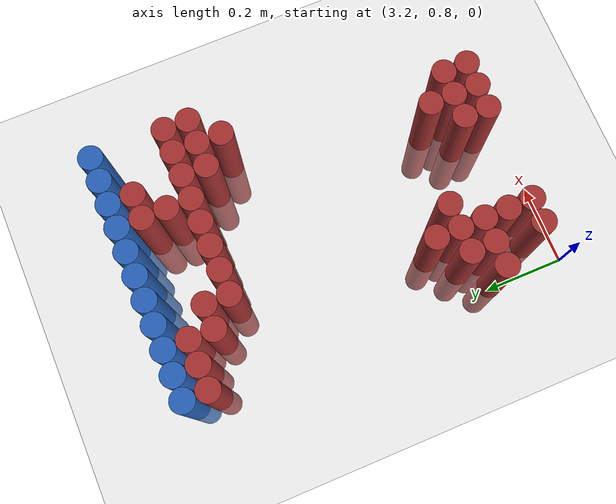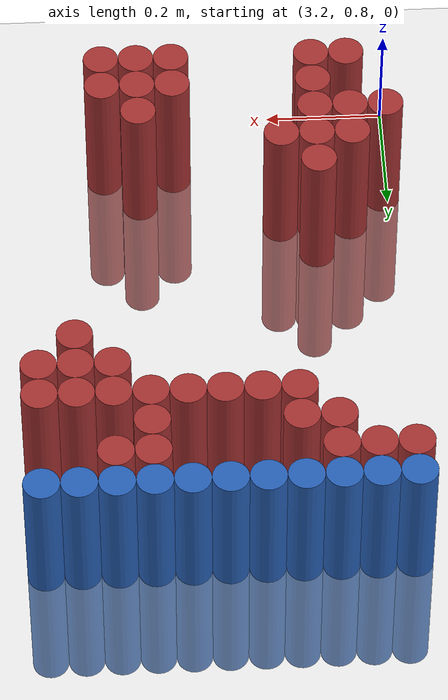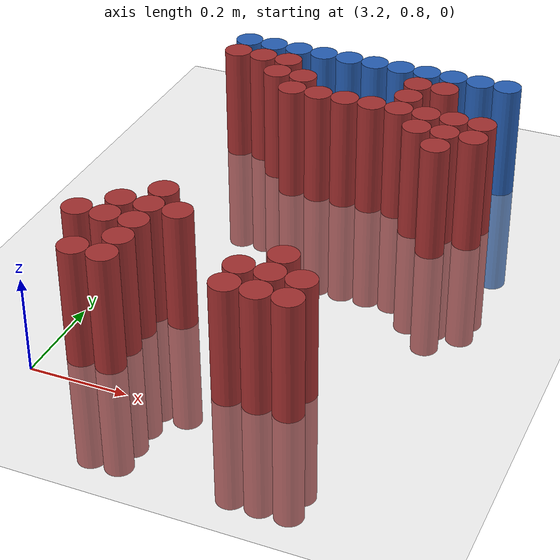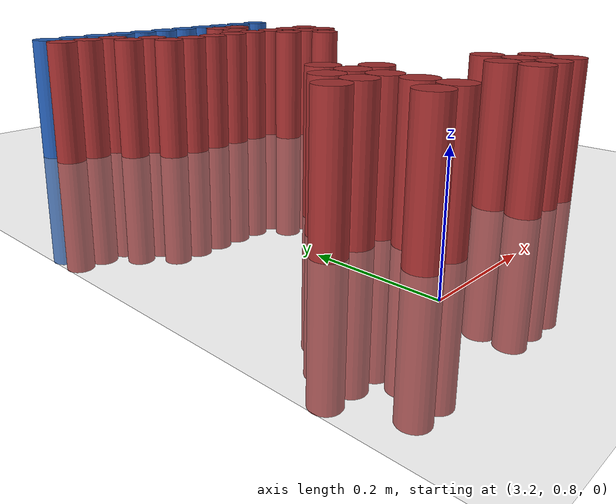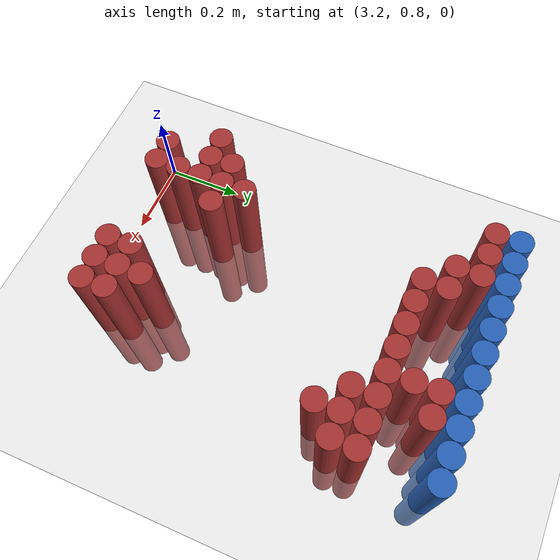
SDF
<sdf version="1.6">
 <world name="default">
  <model name="ground_plane">
   <static>1</static>
   <link name="link">
    <collision name="collision">
     <geometry><plane><normal>0 0 1</normal><size>100 100</size></plane></geometry>
     <surface><friction><ode><mu>100</mu><mu2>50</mu2></ode></friction></surface>
    </collision>
    <visual name="visual">
     <cast_shadows>0</cast_shadows>
     <geometry><plane><normal>0 0 1</normal><size>100 100</size></plane></geometry>
     <material>
      <script><uri>file://media/materials/scripts/gazebo.material</uri><name>Gazebo/Grey</name></script>
     </material>
    </visual>
   </link>
  </model>
  <model name="unit_cylinder_114">
   <static>1</static>
   <pose>3.210000 1.770000 0.000000 0.000000 0.000000 0.000000</pose>
   <link name="link">
    <inertial>
     <mass>1</mass>
     <inertia><ixx>0.145833</ixx><ixy>0</ixy><ixz>0</ixz><iyy>0.145833</iyy><iyz>0</iyz><izz>0.125</izz></inertia>
    </inertial>
    <collision name="collision">
     <geometry><cylinder><radius>0.030000</radius><length>0.5</length></cylinder></geometry>
    </collision>
    <visual name="visual">
     <geometry><cylinder><radius>0.030000</radius><length>0.5</length></cylinder></geometry>
     <material>
      <ambient>0.152000 0.379000 0.720000 1</ambient>
      <diffuse>0.152000 0.379000 0.720000 1</diffuse>
     </material>
     <material>
      <script><name>Gazebo/Grey</name><uri>file://media/materials/scripts/gazebo.material</uri></script>
     </material>
    </visual>
   </link>
  </model>
  <model name="unit_cylinder_115">
   <static>1</static>
   <pose>3.270000 1.770000 0.000000 0.000000 0.000000 0.000000</pose>
   <link name="link">
    <inertial>
     <mass>1</mass>
     <inertia><ixx>0.145833</ixx><ixy>0</ixy><ixz>0</ixz><iyy>0.145833</iyy><iyz>0</iyz><izz>0.125</izz></inertia>
    </inertial>
    <collision name="collision">
     <geometry><cylinder><radius>0.030000</radius><length>0.5</length></cylinder></geometry>
    </collision>
    <visual name="visual">
     <geometry><cylinder><radius>0.030000</radius><length>0.5</length></cylinder></geometry>
     <material>
      <ambient>0.152000 0.379000 0.720000 1</ambient>
      <diffuse>0.152000 0.379000 0.720000 1</diffuse>
     </material>
     <material>
      <script><name>Gazebo/Grey</name><uri>file://media/materials/scripts/gazebo.material</uri></script>
     </material>
    </visual>
   </link>
  </model>
  <model name="unit_cylinder_116">
   <static>1</static>
   <pose>3.330000 1.770000 0.000000 0.000000 0.000000 0.000000</pose>
   <link name="link">
    <inertial>
     <mass>1</mass>
     <inertia><ixx>0.145833</ixx><ixy>0</ixy><ixz>0</ixz><iyy>0.145833</iyy><iyz>0</iyz><izz>0.125</izz></inertia>
    </inertial>
    <collision name="collision">
     <geometry><cylinder><radius>0.030000</radius><length>0.5</length></cylinder></geometry>
    </collision>
    <visual name="visual">
     <geometry><cylinder><radius>0.030000</radius><length>0.5</length></cylinder></geometry>
     <material>
      <ambient>0.152000 0.379000 0.720000 1</ambient>
      <diffuse>0.152000 0.379000 0.720000 1</diffuse>
     </material>
     <material>
      <script><name>Gazebo/Grey</name><uri>file://media/materials/scripts/gazebo.material</uri></script>
     </material>
    </visual>
   </link>
  </model>
  <model name="unit_cylinder_117">
   <static>1</static>
   <pose>3.390000 1.770000 0.000000 0.000000 0.000000 0.000000</pose>
   <link name="link">
    <inertial>
     <mass>1</mass>
     <inertia><ixx>0.145833</ixx><ixy>0</ixy><ixz>0</ixz><iyy>0.145833</iyy><iyz>0</iyz><izz>0.125</izz></inertia>
    </inertial>
    <collision name="collision">
     <geometry><cylinder><radius>0.030000</radius><length>0.5</length></cylinder></geometry>
    </collision>
    <visual name="visual">
     <geometry><cylinder><radius>0.030000</radius><length>0.5</length></cylinder></geometry>
     <material>
      <ambient>0.152000 0.379000 0.720000 1</ambient>
      <diffuse>0.152000 0.379000 0.720000 1</diffuse>
     </material>
     <material>
      <script><name>Gazebo/Grey</name><uri>file://media/materials/scripts/gazebo.material</uri></script>
     </material>
    </visual>
   </link>
  </model>
  <model name="unit_cylinder_118">
   <static>1</static>
   <pose>3.450000 1.770000 0.000000 0.000000 0.000000 0.000000</pose>
   <link name="link">
    <inertial>
     <mass>1</mass>
     <inertia><ixx>0.145833</ixx><ixy>0</ixy><ixz>0</ixz><iyy>0.145833</iyy><iyz>0</iyz><izz>0.125</izz></inertia>
    </inertial>
    <collision name="collision">
     <geometry><cylinder><radius>0.030000</radius><length>0.5</length></cylinder></geometry>
    </collision>
    <visual name="visual">
     <geometry><cylinder><radius>0.030000</radius><length>0.5</length></cylinder></geometry>
     <material>
      <ambient>0.152000 0.379000 0.720000 1</ambient>
      <diffuse>0.152000 0.379000 0.720000 1</diffuse>
     </material>
     <material>
      <script><name>Gazebo/Grey</name><uri>file://media/materials/scripts/gazebo.material</uri></script>
     </material>
    </visual>
   </link>
  </model>
  <model name="unit_cylinder_119">
   <static>1</static>
   <pose>3.510000 1.770000 0.000000 0.000000 0.000000 0.000000</pose>
   <link name="link">
    <inertial>
     <mass>1</mass>
     <inertia><ixx>0.145833</ixx><ixy>0</ixy><ixz>0</ixz><iyy>0.145833</iyy><iyz>0</iyz><izz>0.125</izz></inertia>
    </inertial>
    <collision name="collision">
     <geometry><cylinder><radius>0.030000</radius><length>0.5</length></cylinder></geometry>
    </collision>
    <visual name="visual">
     <geometry><cylinder><radius>0.030000</radius><length>0.5</length></cylinder></geometry>
     <material>
      <ambient>0.152000 0.379000 0.720000 1</ambient>
      <diffuse>0.152000 0.379000 0.720000 1</diffuse>
     </material>
     <material>
      <script><name>Gazebo/Grey</name><uri>file://media/materials/scripts/gazebo.material</uri></script>
     </material>
    </visual>
   </link>
  </model>
  <model name="unit_cylinder_120">
   <static>1</static>
   <pose>3.570000 1.770000 0.000000 0.000000 0.000000 0.000000</pose>
   <link name="link">
    <inertial>
     <mass>1</mass>
     <inertia><ixx>0.145833</ixx><ixy>0</ixy><ixz>0</ixz><iyy>0.145833</iyy><iyz>0</iyz><izz>0.125</izz></inertia>
    </inertial>
    <collision name="collision">
     <geometry><cylinder><radius>0.030000</radius><length>0.5</length></cylinder></geometry>
    </collision>
    <visual name="visual">
     <geometry><cylinder><radius>0.030000</radius><length>0.5</length></cylinder></geometry>
     <material>
      <ambient>0.152000 0.379000 0.720000 1</ambient>
      <diffuse>0.152000 0.379000 0.720000 1</diffuse>
     </material>
     <material>
      <script><name>Gazebo/Grey</name><uri>file://media/materials/scripts/gazebo.material</uri></script>
     </material>
    </visual>
   </link>
  </model>
  <model name="unit_cylinder_121">
   <static>1</static>
   <pose>3.630000 1.770000 0.000000 0.000000 0.000000 0.000000</pose>
   <link name="link">
    <inertial>
     <mass>1</mass>
     <inertia><ixx>0.145833</ixx><ixy>0</ixy><ixz>0</ixz><iyy>0.145833</iyy><iyz>0</iyz><izz>0.125</izz></inertia>
    </inertial>
    <collision name="collision">
     <geometry><cylinder><radius>0.030000</radius><length>0.5</length></cylinder></geometry>
    </collision>
    <visual name="visual">
     <geometry><cylinder><radius>0.030000</radius><length>0.5</length></cylinder></geometry>
     <material>
      <ambient>0.152000 0.379000 0.720000 1</ambient>
      <diffuse>0.152000 0.379000 0.720000 1</diffuse>
     </material>
     <material>
      <script><name>Gazebo/Grey</name><uri>file://media/materials/scripts/gazebo.material</uri></script>
     </material>
    </visual>
   </link>
  </model>
  <model name="unit_cylinder_122">
   <static>1</static>
   <pose>3.690000 1.770000 0.000000 0.000000 0.000000 0.000000</pose>
   <link name="link">
    <inertial>
     <mass>1</mass>
     <inertia><ixx>0.145833</ixx><ixy>0</ixy><ixz>0</ixz><iyy>0.145833</iyy><iyz>0</iyz><izz>0.125</izz></inertia>
    </inertial>
    <collision name="collision">
     <geometry><cylinder><radius>0.030000</radius><length>0.5</length></cylinder></geometry>
    </collision>
    <visual name="visual">
     <geometry><cylinder><radius>0.030000</radius><length>0.5</length></cylinder></geometry>
     <material>
      <ambient>0.152000 0.379000 0.720000 1</ambient>
      <diffuse>0.152000 0.379000 0.720000 1</diffuse>
     </material>
     <material>
      <script><name>Gazebo/Grey</name><uri>file://media/materials/scripts/gazebo.material</uri></script>
     </material>
    </visual>
   </link>
  </model>
  <model name="unit_cylinder_123">
   <static>1</static>
   <pose>3.750000 1.770000 0.000000 0.000000 0.000000 0.000000</pose>
   <link name="link">
    <inertial>
     <mass>1</mass>
     <inertia><ixx>0.145833</ixx><ixy>0</ixy><ixz>0</ixz><iyy>0.145833</iyy><iyz>0</iyz><izz>0.125</izz></inertia>
    </inertial>
    <collision name="collision">
     <geometry><cylinder><radius>0.030000</radius><length>0.5</length></cylinder></geometry>
    </collision>
    <visual name="visual">
     <geometry><cylinder><radius>0.030000</radius><length>0.5</length></cylinder></geometry>
     <material>
      <ambient>0.152000 0.379000 0.720000 1</ambient>
      <diffuse>0.152000 0.379000 0.720000 1</diffuse>
     </material>
     <material>
      <script><name>Gazebo/Grey</name><uri>file://media/materials/scripts/gazebo.material</uri></script>
     </material>
    </visual>
   </link>
  </model>
  <model name="unit_cylinder_124">
   <static>1</static>
   <pose>3.810000 1.770000 0.000000 0.000000 0.000000 0.000000</pose>
   <link name="link">
    <inertial>
     <mass>1</mass>
     <inertia><ixx>0.145833</ixx><ixy>0</ixy><ixz>0</ixz><iyy>0.145833</iyy><iyz>0</iyz><izz>0.125</izz></inertia>
    </inertial>
    <collision name="collision">
     <geometry><cylinder><radius>0.030000</radius><length>0.5</length></cylinder></geometry>
    </collision>
    <visual name="visual">
     <geometry><cylinder><radius>0.030000</radius><length>0.5</length></cylinder></geometry>
     <material>
      <ambient>0.152000 0.379000 0.720000 1</ambient>
      <diffuse>0.152000 0.379000 0.720000 1</diffuse>
     </material>
     <material>
      <script><name>Gazebo/Grey</name><uri>file://media/materials/scripts/gazebo.material</uri></script>
     </material>
    </visual>
   </link>
  </model>
  <model name="unit_cylinder_135">
   <static>1</static>
   <pose>3.210000 1.710000 0.000000 0.000000 0.000000 0.000000</pose>
   <link name="link">
    <inertial>
     <mass>1</mass>
     <inertia><ixx>0.145833</ixx><ixy>0</ixy><ixz>0</ixz><iyy>0.145833</iyy><iyz>0</iyz><izz>0.125</izz></inertia>
    </inertial>
    <collision name="collision">
     <geometry><cylinder><radius>0.030000</radius><length>0.5</length></cylinder></geometry>
    </collision>
    <visual name="visual">
     <geometry><cylinder><radius>0.030000</radius><length>0.5</length></cylinder></geometry>
     <material>
      <ambient>0.648000 0.192000 0.192000 1</ambient>
      <diffuse>0.648000 0.192000 0.192000 1</diffuse>
     </material>
     <material>
      <script><name>Gazebo/Grey</name><uri>file://media/materials/scripts/gazebo.material</uri></script>
     </material>
    </visual>
   </link>
  </model>
  <model name="unit_cylinder_136">
   <static>1</static>
   <pose>3.270000 1.710000 0.000000 0.000000 0.000000 0.000000</pose>
   <link name="link">
    <inertial>
     <mass>1</mass>
     <inertia><ixx>0.145833</ixx><ixy>0</ixy><ixz>0</ixz><iyy>0.145833</iyy><iyz>0</iyz><izz>0.125</izz></inertia>
    </inertial>
    <collision name="collision">
     <geometry><cylinder><radius>0.030000</radius><length>0.5</length></cylinder></geometry>
    </collision>
    <visual name="visual">
     <geometry><cylinder><radius>0.030000</radius><length>0.5</length></cylinder></geometry>
     <material>
      <ambient>0.648000 0.192000 0.192000 1</ambient>
      <diffuse>0.648000 0.192000 0.192000 1</diffuse>
     </material>
     <material>
      <script><name>Gazebo/Grey</name><uri>file://media/materials/scripts/gazebo.material</uri></script>
     </material>
    </visual>
   </link>
  </model>
  <model name="unit_cylinder_137">
   <static>1</static>
   <pose>3.330000 1.710000 0.000000 0.000000 0.000000 0.000000</pose>
   <link name="link">
    <inertial>
     <mass>1</mass>
     <inertia><ixx>0.145833</ixx><ixy>0</ixy><ixz>0</ixz><iyy>0.145833</iyy><iyz>0</iyz><izz>0.125</izz></inertia>
    </inertial>
    <collision name="collision">
     <geometry><cylinder><radius>0.030000</radius><length>0.5</length></cylinder></geometry>
    </collision>
    <visual name="visual">
     <geometry><cylinder><radius>0.030000</radius><length>0.5</length></cylinder></geometry>
     <material>
      <ambient>0.648000 0.192000 0.192000 1</ambient>
      <diffuse>0.648000 0.192000 0.192000 1</diffuse>
     </material>
     <material>
      <script><name>Gazebo/Grey</name><uri>file://media/materials/scripts/gazebo.material</uri></script>
     </material>
    </visual>
   </link>
  </model>
  <model name="unit_cylinder_138">
   <static>1</static>
   <pose>3.630000 1.710000 0.000000 0.000000 0.000000 0.000000</pose>
   <link name="link">
    <inertial>
     <mass>1</mass>
     <inertia><ixx>0.145833</ixx><ixy>0</ixy><ixz>0</ixz><iyy>0.145833</iyy><iyz>0</iyz><izz>0.125</izz></inertia>
    </inertial>
    <collision name="collision">
     <geometry><cylinder><radius>0.030000</radius><length>0.5</length></cylinder></geometry>
    </collision>
    <visual name="visual">
     <geometry><cylinder><radius>0.030000</radius><length>0.5</length></cylinder></geometry>
     <material>
      <ambient>0.648000 0.192000 0.192000 1</ambient>
      <diffuse>0.648000 0.192000 0.192000 1</diffuse>
     </material>
     <material>
      <script><name>Gazebo/Grey</name><uri>file://media/materials/scripts/gazebo.material</uri></script>
     </material>
    </visual>
   </link>
  </model>
  <model name="unit_cylinder_139">
   <static>1</static>
   <pose>3.690000 1.710000 0.000000 0.000000 0.000000 0.000000</pose>
   <link name="link">
    <inertial>
     <mass>1</mass>
     <inertia><ixx>0.145833</ixx><ixy>0</ixy><ixz>0</ixz><iyy>0.145833</iyy><iyz>0</iyz><izz>0.125</izz></inertia>
    </inertial>
    <collision name="collision">
     <geometry><cylinder><radius>0.030000</radius><length>0.5</length></cylinder></geometry>
    </collision>
    <visual name="visual">
     <geometry><cylinder><radius>0.030000</radius><length>0.5</length></cylinder></geometry>
     <material>
      <ambient>0.648000 0.192000 0.192000 1</ambient>
      <diffuse>0.648000 0.192000 0.192000 1</diffuse>
     </material>
     <material>
      <script><name>Gazebo/Grey</name><uri>file://media/materials/scripts/gazebo.material</uri></script>
     </material>
    </visual>
   </link>
  </model>
  <model name="unit_cylinder_148">
   <static>1</static>
   <pose>3.330000 1.650000 0.000000 0.000000 0.000000 0.000000</pose>
   <link name="link">
    <inertial>
     <mass>1</mass>
     <inertia><ixx>0.145833</ixx><ixy>0</ixy><ixz>0</ixz><iyy>0.145833</iyy><iyz>0</iyz><izz>0.125</izz></inertia>
    </inertial>
    <collision name="collision">
     <geometry><cylinder><radius>0.030000</radius><length>0.5</length></cylinder></geometry>
    </collision>
    <visual name="visual">
     <geometry><cylinder><radius>0.030000</radius><length>0.5</length></cylinder></geometry>
     <material>
      <ambient>0.648000 0.192000 0.192000 1</ambient>
      <diffuse>0.648000 0.192000 0.192000 1</diffuse>
     </material>
     <material>
      <script><name>Gazebo/Grey</name><uri>file://media/materials/scripts/gazebo.material</uri></script>
     </material>
    </visual>
   </link>
  </model>
  <model name="unit_cylinder_149">
   <static>1</static>
   <pose>3.390000 1.650000 0.000000 0.000000 0.000000 0.000000</pose>
   <link name="link">
    <inertial>
     <mass>1</mass>
     <inertia><ixx>0.145833</ixx><ixy>0</ixy><ixz>0</ixz><iyy>0.145833</iyy><iyz>0</iyz><izz>0.125</izz></inertia>
    </inertial>
    <collision name="collision">
     <geometry><cylinder><radius>0.030000</radius><length>0.5</length></cylinder></geometry>
    </collision>
    <visual name="visual">
     <geometry><cylinder><radius>0.030000</radius><length>0.5</length></cylinder></geometry>
     <material>
      <ambient>0.648000 0.192000 0.192000 1</ambient>
      <diffuse>0.648000 0.192000 0.192000 1</diffuse>
     </material>
     <material>
      <script><name>Gazebo/Grey</name><uri>file://media/materials/scripts/gazebo.material</uri></script>
     </material>
    </visual>
   </link>
  </model>
  <model name="unit_cylinder_150">
   <static>1</static>
   <pose>3.630000 1.650000 0.000000 0.000000 0.000000 0.000000</pose>
   <link name="link">
    <inertial>
     <mass>1</mass>
     <inertia><ixx>0.145833</ixx><ixy>0</ixy><ixz>0</ixz><iyy>0.145833</iyy><iyz>0</iyz><izz>0.125</izz></inertia>
    </inertial>
    <collision name="collision">
     <geometry><cylinder><radius>0.030000</radius><length>0.5</length></cylinder></geometry>
    </collision>
    <visual name="visual">
     <geometry><cylinder><radius>0.030000</radius><length>0.5</length></cylinder></geometry>
     <material>
      <ambient>0.648000 0.192000 0.192000 1</ambient>
      <diffuse>0.648000 0.192000 0.192000 1</diffuse>
     </material>
     <material>
      <script><name>Gazebo/Grey</name><uri>file://media/materials/scripts/gazebo.material</uri></script>
     </material>
    </visual>
   </link>
  </model>
  <model name="unit_cylinder_154">
   <static>1</static>
   <pose>3.390000 1.590000 0.000000 0.000000 0.000000 0.000000</pose>
   <link name="link">
    <inertial>
     <mass>1</mass>
     <inertia><ixx>0.145833</ixx><ixy>0</ixy><ixz>0</ixz><iyy>0.145833</iyy><iyz>0</iyz><izz>0.125</izz></inertia>
    </inertial>
    <collision name="collision">
     <geometry><cylinder><radius>0.030000</radius><length>0.5</length></cylinder></geometry>
    </collision>
    <visual name="visual">
     <geometry><cylinder><radius>0.030000</radius><length>0.5</length></cylinder></geometry>
     <material>
      <ambient>0.648000 0.192000 0.192000 1</ambient>
      <diffuse>0.648000 0.192000 0.192000 1</diffuse>
     </material>
     <material>
      <script><name>Gazebo/Grey</name><uri>file://media/materials/scripts/gazebo.material</uri></script>
     </material>
    </visual>
   </link>
  </model>
  <model name="unit_cylinder_155">
   <static>1</static>
   <pose>3.450000 1.590000 0.000000 0.000000 0.000000 0.000000</pose>
   <link name="link">
    <inertial>
     <mass>1</mass>
     <inertia><ixx>0.145833</ixx><ixy>0</ixy><ixz>0</ixz><iyy>0.145833</iyy><iyz>0</iyz><izz>0.125</izz></inertia>
    </inertial>
    <collision name="collision">
     <geometry><cylinder><radius>0.030000</radius><length>0.5</length></cylinder></geometry>
    </collision>
    <visual name="visual">
     <geometry><cylinder><radius>0.030000</radius><length>0.5</length></cylinder></geometry>
     <material>
      <ambient>0.648000 0.192000 0.192000 1</ambient>
      <diffuse>0.648000 0.192000 0.192000 1</diffuse>
     </material>
     <material>
      <script><name>Gazebo/Grey</name><uri>file://media/materials/scripts/gazebo.material</uri></script>
     </material>
    </visual>
   </link>
  </model>
  <model name="unit_cylinder_156">
   <static>1</static>
   <pose>3.510000 1.590000 0.000000 0.000000 0.000000 0.000000</pose>
   <link name="link">
    <inertial>
     <mass>1</mass>
     <inertia><ixx>0.145833</ixx><ixy>0</ixy><ixz>0</ixz><iyy>0.145833</iyy><iyz>0</iyz><izz>0.125</izz></inertia>
    </inertial>
    <collision name="collision">
     <geometry><cylinder><radius>0.030000</radius><length>0.5</length></cylinder></geometry>
    </collision>
    <visual name="visual">
     <geometry><cylinder><radius>0.030000</radius><length>0.5</length></cylinder></geometry>
     <material>
      <ambient>0.648000 0.192000 0.192000 1</ambient>
      <diffuse>0.648000 0.192000 0.192000 1</diffuse>
     </material>
     <material>
      <script><name>Gazebo/Grey</name><uri>file://media/materials/scripts/gazebo.material</uri></script>
     </material>
    </visual>
   </link>
  </model>
  <model name="unit_cylinder_157">
   <static>1</static>
   <pose>3.570000 1.590000 0.000000 0.000000 0.000000 0.000000</pose>
   <link name="link">
    <inertial>
     <mass>1</mass>
     <inertia><ixx>0.145833</ixx><ixy>0</ixy><ixz>0</ixz><iyy>0.145833</iyy><iyz>0</iyz><izz>0.125</izz></inertia>
    </inertial>
    <collision name="collision">
     <geometry><cylinder><radius>0.030000</radius><length>0.5</length></cylinder></geometry>
    </collision>
    <visual name="visual">
     <geometry><cylinder><radius>0.030000</radius><length>0.5</length></cylinder></geometry>
     <material>
      <ambient>0.648000 0.192000 0.192000 1</ambient>
      <diffuse>0.648000 0.192000 0.192000 1</diffuse>
     </material>
     <material>
      <script><name>Gazebo/Grey</name><uri>file://media/materials/scripts/gazebo.material</uri></script>
     </material>
    </visual>
   </link>
  </model>
  <model name="unit_cylinder_158">
   <static>1</static>
   <pose>3.630000 1.590000 0.000000 0.000000 0.000000 0.000000</pose>
   <link name="link">
    <inertial>
     <mass>1</mass>
     <inertia><ixx>0.145833</ixx><ixy>0</ixy><ixz>0</ixz><iyy>0.145833</iyy><iyz>0</iyz><izz>0.125</izz></inertia>
    </inertial>
    <collision name="collision">
     <geometry><cylinder><radius>0.030000</radius><length>0.5</length></cylinder></geometry>
    </collision>
    <visual name="visual">
     <geometry><cylinder><radius>0.030000</radius><length>0.5</length></cylinder></geometry>
     <material>
      <ambient>0.648000 0.192000 0.192000 1</ambient>
      <diffuse>0.648000 0.192000 0.192000 1</diffuse>
     </material>
     <material>
      <script><name>Gazebo/Grey</name><uri>file://media/materials/scripts/gazebo.material</uri></script>
     </material>
    </visual>
   </link>
  </model>
  <model name="unit_cylinder_159">
   <static>1</static>
   <pose>3.690000 1.590000 0.000000 0.000000 0.000000 0.000000</pose>
   <link name="link">
    <inertial>
     <mass>1</mass>
     <inertia><ixx>0.145833</ixx><ixy>0</ixy><ixz>0</ixz><iyy>0.145833</iyy><iyz>0</iyz><izz>0.125</izz></inertia>
    </inertial>
    <collision name="collision">
     <geometry><cylinder><radius>0.030000</radius><length>0.5</length></cylinder></geometry>
    </collision>
    <visual name="visual">
     <geometry><cylinder><radius>0.030000</radius><length>0.5</length></cylinder></geometry>
     <material>
      <ambient>0.648000 0.192000 0.192000 1</ambient>
      <diffuse>0.648000 0.192000 0.192000 1</diffuse>
     </material>
     <material>
      <script><name>Gazebo/Grey</name><uri>file://media/materials/scripts/gazebo.material</uri></script>
     </material>
    </visual>
   </link>
  </model>
  <model name="unit_cylinder_160">
   <static>1</static>
   <pose>3.750000 1.590000 0.000000 0.000000 0.000000 0.000000</pose>
   <link name="link">
    <inertial>
     <mass>1</mass>
     <inertia><ixx>0.145833</ixx><ixy>0</ixy><ixz>0</ixz><iyy>0.145833</iyy><iyz>0</iyz><izz>0.125</izz></inertia>
    </inertial>
    <collision name="collision">
     <geometry><cylinder><radius>0.030000</radius><length>0.5</length></cylinder></geometry>
    </collision>
    <visual name="visual">
     <geometry><cylinder><radius>0.030000</radius><length>0.5</length></cylinder></geometry>
     <material>
      <ambient>0.648000 0.192000 0.192000 1</ambient>
      <diffuse>0.648000 0.192000 0.192000 1</diffuse>
     </material>
     <material>
      <script><name>Gazebo/Grey</name><uri>file://media/materials/scripts/gazebo.material</uri></script>
     </material>
    </visual>
   </link>
  </model>
  <model name="unit_cylinder_161">
   <static>1</static>
   <pose>3.810000 1.590000 0.000000 0.000000 0.000000 0.000000</pose>
   <link name="link">
    <inertial>
     <mass>1</mass>
     <inertia><ixx>0.145833</ixx><ixy>0</ixy><ixz>0</ixz><iyy>0.145833</iyy><iyz>0</iyz><izz>0.125</izz></inertia>
    </inertial>
    <collision name="collision">
     <geometry><cylinder><radius>0.030000</radius><length>0.5</length></cylinder></geometry>
    </collision>
    <visual name="visual">
     <geometry><cylinder><radius>0.030000</radius><length>0.5</length></cylinder></geometry>
     <material>
      <ambient>0.648000 0.192000 0.192000 1</ambient>
      <diffuse>0.648000 0.192000 0.192000 1</diffuse>
     </material>
     <material>
      <script><name>Gazebo/Grey</name><uri>file://media/materials/scripts/gazebo.material</uri></script>
     </material>
    </visual>
   </link>
  </model>
  <model name="unit_cylinder_162">
   <static>1</static>
   <pose>3.690000 1.530000 0.000000 0.000000 0.000000 0.000000</pose>
   <link name="link">
    <inertial>
     <mass>1</mass>
     <inertia><ixx>0.145833</ixx><ixy>0</ixy><ixz>0</ixz><iyy>0.145833</iyy><iyz>0</iyz><izz>0.125</izz></inertia>
    </inertial>
    <collision name="collision">
     <geometry><cylinder><radius>0.030000</radius><length>0.5</length></cylinder></geometry>
    </collision>
    <visual name="visual">
     <geometry><cylinder><radius>0.030000</radius><length>0.5</length></cylinder></geometry>
     <material>
      <ambient>0.648000 0.192000 0.192000 1</ambient>
      <diffuse>0.648000 0.192000 0.192000 1</diffuse>
     </material>
     <material>
      <script><name>Gazebo/Grey</name><uri>file://media/materials/scripts/gazebo.material</uri></script>
     </material>
    </visual>
   </link>
  </model>
  <model name="unit_cylinder_163">
   <static>1</static>
   <pose>3.750000 1.530000 0.000000 0.000000 0.000000 0.000000</pose>
   <link name="link">
    <inertial>
     <mass>1</mass>
     <inertia><ixx>0.145833</ixx><ixy>0</ixy><ixz>0</ixz><iyy>0.145833</iyy><iyz>0</iyz><izz>0.125</izz></inertia>
    </inertial>
    <collision name="collision">
     <geometry><cylinder><radius>0.030000</radius><length>0.5</length></cylinder></geometry>
    </collision>
    <visual name="visual">
     <geometry><cylinder><radius>0.030000</radius><length>0.5</length></cylinder></geometry>
     <material>
      <ambient>0.648000 0.192000 0.192000 1</ambient>
      <diffuse>0.648000 0.192000 0.192000 1</diffuse>
     </material>
     <material>
      <script><name>Gazebo/Grey</name><uri>file://media/materials/scripts/gazebo.material</uri></script>
     </material>
    </visual>
   </link>
  </model>
  <model name="unit_cylinder_164">
   <static>1</static>
   <pose>3.810000 1.530000 0.000000 0.000000 0.000000 0.000000</pose>
   <link name="link">
    <inertial>
     <mass>1</mass>
     <inertia><ixx>0.145833</ixx><ixy>0</ixy><ixz>0</ixz><iyy>0.145833</iyy><iyz>0</iyz><izz>0.125</izz></inertia>
    </inertial>
    <collision name="collision">
     <geometry><cylinder><radius>0.030000</radius><length>0.5</length></cylinder></geometry>
    </collision>
    <visual name="visual">
     <geometry><cylinder><radius>0.030000</radius><length>0.5</length></cylinder></geometry>
     <material>
      <ambient>0.648000 0.192000 0.192000 1</ambient>
      <diffuse>0.648000 0.192000 0.192000 1</diffuse>
     </material>
     <material>
      <script><name>Gazebo/Grey</name><uri>file://media/materials/scripts/gazebo.material</uri></script>
     </material>
    </visual>
   </link>
  </model>
  <model name="unit_cylinder_165">
   <static>1</static>
   <pose>3.750000 1.470000 0.000000 0.000000 0.000000 0.000000</pose>
   <link name="link">
    <inertial>
     <mass>1</mass>
     <inertia><ixx>0.145833</ixx><ixy>0</ixy><ixz>0</ixz><iyy>0.145833</iyy><iyz>0</iyz><izz>0.125</izz></inertia>
    </inertial>
    <collision name="collision">
     <geometry><cylinder><radius>0.030000</radius><length>0.5</length></cylinder></geometry>
    </collision>
    <visual name="visual">
     <geometry><cylinder><radius>0.030000</radius><length>0.5</length></cylinder></geometry>
     <material>
      <ambient>0.648000 0.192000 0.192000 1</ambient>
      <diffuse>0.648000 0.192000 0.192000 1</diffuse>
     </material>
     <material>
      <script><name>Gazebo/Grey</name><uri>file://media/materials/scripts/gazebo.material</uri></script>
     </material>
    </visual>
   </link>
  </model>
  <model name="unit_cylinder_178">
   <static>1</static>
   <pose>3.330000 1.110000 0.000000 0.000000 0.000000 0.000000</pose>
   <link name="link">
    <inertial>
     <mass>1</mass>
     <inertia><ixx>0.145833</ixx><ixy>0</ixy><ixz>0</ixz><iyy>0.145833</iyy><iyz>0</iyz><izz>0.125</izz></inertia>
    </inertial>
    <collision name="collision">
     <geometry><cylinder><radius>0.030000</radius><length>0.5</length></cylinder></geometry>
    </collision>
    <visual name="visual">
     <geometry><cylinder><radius>0.030000</radius><length>0.5</length></cylinder></geometry>
     <material>
      <ambient>0.648000 0.192000 0.192000 1</ambient>
      <diffuse>0.648000 0.192000 0.192000 1</diffuse>
     </material>
     <material>
      <script><name>Gazebo/Grey</name><uri>file://media/materials/scripts/gazebo.material</uri></script>
     </material>
    </visual>
   </link>
  </model>
  <model name="unit_cylinder_189">
   <static>1</static>
   <pose>3.270000 1.050000 0.000000 0.000000 0.000000 0.000000</pose>
   <link name="link">
    <inertial>
     <mass>1</mass>
     <inertia><ixx>0.145833</ixx><ixy>0</ixy><ixz>0</ixz><iyy>0.145833</iyy><iyz>0</iyz><izz>0.125</izz></inertia>
    </inertial>
    <collision name="collision">
     <geometry><cylinder><radius>0.030000</radius><length>0.5</length></cylinder></geometry>
    </collision>
    <visual name="visual">
     <geometry><cylinder><radius>0.030000</radius><length>0.5</length></cylinder></geometry>
     <material>
      <ambient>0.648000 0.192000 0.192000 1</ambient>
      <diffuse>0.648000 0.192000 0.192000 1</diffuse>
     </material>
     <material>
      <script><name>Gazebo/Grey</name><uri>file://media/materials/scripts/gazebo.material</uri></script>
     </material>
    </visual>
   </link>
  </model>
  <model name="unit_cylinder_190">
   <static>1</static>
   <pose>3.330000 1.050000 0.000000 0.000000 0.000000 0.000000</pose>
   <link name="link">
    <inertial>
     <mass>1</mass>
     <inertia><ixx>0.145833</ixx><ixy>0</ixy><ixz>0</ixz><iyy>0.145833</iyy><iyz>0</iyz><izz>0.125</izz></inertia>
    </inertial>
    <collision name="collision">
     <geometry><cylinder><radius>0.030000</radius><length>0.5</length></cylinder></geometry>
    </collision>
    <visual name="visual">
     <geometry><cylinder><radius>0.030000</radius><length>0.5</length></cylinder></geometry>
     <material>
      <ambient>0.648000 0.192000 0.192000 1</ambient>
      <diffuse>0.648000 0.192000 0.192000 1</diffuse>
     </material>
     <material>
      <script><name>Gazebo/Grey</name><uri>file://media/materials/scripts/gazebo.material</uri></script>
     </material>
    </visual>
   </link>
  </model>
  <model name="unit_cylinder_191">
   <static>1</static>
   <pose>3.390000 1.050000 0.000000 0.000000 0.000000 0.000000</pose>
   <link name="link">
    <inertial>
     <mass>1</mass>
     <inertia><ixx>0.145833</ixx><ixy>0</ixy><ixz>0</ixz><iyy>0.145833</iyy><iyz>0</iyz><izz>0.125</izz></inertia>
    </inertial>
    <collision name="collision">
     <geometry><cylinder><radius>0.030000</radius><length>0.5</length></cylinder></geometry>
    </collision>
    <visual name="visual">
     <geometry><cylinder><radius>0.030000</radius><length>0.5</length></cylinder></geometry>
     <material>
      <ambient>0.648000 0.192000 0.192000 1</ambient>
      <diffuse>0.648000 0.192000 0.192000 1</diffuse>
     </material>
     <material>
      <script><name>Gazebo/Grey</name><uri>file://media/materials/scripts/gazebo.material</uri></script>
     </material>
    </visual>
   </link>
  </model>
  <model name="unit_cylinder_198">
   <static>1</static>
   <pose>3.210000 0.990000 0.000000 0.000000 0.000000 0.000000</pose>
   <link name="link">
    <inertial>
     <mass>1</mass>
     <inertia><ixx>0.145833</ixx><ixy>0</ixy><ixz>0</ixz><iyy>0.145833</iyy><iyz>0</iyz><izz>0.125</izz></inertia>
    </inertial>
    <collision name="collision">
     <geometry><cylinder><radius>0.030000</radius><length>0.5</length></cylinder></geometry>
    </collision>
    <visual name="visual">
     <geometry><cylinder><radius>0.030000</radius><length>0.5</length></cylinder></geometry>
     <material>
      <ambient>0.648000 0.192000 0.192000 1</ambient>
      <diffuse>0.648000 0.192000 0.192000 1</diffuse>
     </material>
     <material>
      <script><name>Gazebo/Grey</name><uri>file://media/materials/scripts/gazebo.material</uri></script>
     </material>
    </visual>
   </link>
  </model>
  <model name="unit_cylinder_199">
   <static>1</static>
   <pose>3.270000 0.990000 0.000000 0.000000 0.000000 0.000000</pose>
   <link name="link">
    <inertial>
     <mass>1</mass>
     <inertia><ixx>0.145833</ixx><ixy>0</ixy><ixz>0</ixz><iyy>0.145833</iyy><iyz>0</iyz><izz>0.125</izz></inertia>
    </inertial>
    <collision name="collision">
     <geometry><cylinder><radius>0.030000</radius><length>0.5</length></cylinder></geometry>
    </collision>
    <visual name="visual">
     <geometry><cylinder><radius>0.030000</radius><length>0.5</length></cylinder></geometry>
     <material>
      <ambient>0.648000 0.192000 0.192000 1</ambient>
      <diffuse>0.648000 0.192000 0.192000 1</diffuse>
     </material>
     <material>
      <script><name>Gazebo/Grey</name><uri>file://media/materials/scripts/gazebo.material</uri></script>
     </material>
    </visual>
   </link>
  </model>
  <model name="unit_cylinder_200">
   <static>1</static>
   <pose>3.330000 0.990000 0.000000 0.000000 0.000000 0.000000</pose>
   <link name="link">
    <inertial>
     <mass>1</mass>
     <inertia><ixx>0.145833</ixx><ixy>0</ixy><ixz>0</ixz><iyy>0.145833</iyy><iyz>0</iyz><izz>0.125</izz></inertia>
    </inertial>
    <collision name="collision">
     <geometry><cylinder><radius>0.030000</radius><length>0.5</length></cylinder></geometry>
    </collision>
    <visual name="visual">
     <geometry><cylinder><radius>0.030000</radius><length>0.5</length></cylinder></geometry>
     <material>
      <ambient>0.648000 0.192000 0.192000 1</ambient>
      <diffuse>0.648000 0.192000 0.192000 1</diffuse>
     </material>
     <material>
      <script><name>Gazebo/Grey</name><uri>file://media/materials/scripts/gazebo.material</uri></script>
     </material>
    </visual>
   </link>
  </model>
  <model name="unit_cylinder_201">
   <static>1</static>
   <pose>3.630000 0.990000 0.000000 0.000000 0.000000 0.000000</pose>
   <link name="link">
    <inertial>
     <mass>1</mass>
     <inertia><ixx>0.145833</ixx><ixy>0</ixy><ixz>0</ixz><iyy>0.145833</iyy><iyz>0</iyz><izz>0.125</izz></inertia>
    </inertial>
    <collision name="collision">
     <geometry><cylinder><radius>0.030000</radius><length>0.5</length></cylinder></geometry>
    </collision>
    <visual name="visual">
     <geometry><cylinder><radius>0.030000</radius><length>0.5</length></cylinder></geometry>
     <material>
      <ambient>0.648000 0.192000 0.192000 1</ambient>
      <diffuse>0.648000 0.192000 0.192000 1</diffuse>
     </material>
     <material>
      <script><name>Gazebo/Grey</name><uri>file://media/materials/scripts/gazebo.material</uri></script>
     </material>
    </visual>
   </link>
  </model>
  <model name="unit_cylinder_209">
   <static>1</static>
   <pose>3.330000 0.930000 0.000000 0.000000 0.000000 0.000000</pose>
   <link name="link">
    <inertial>
     <mass>1</mass>
     <inertia><ixx>0.145833</ixx><ixy>0</ixy><ixz>0</ixz><iyy>0.145833</iyy><iyz>0</iyz><izz>0.125</izz></inertia>
    </inertial>
    <collision name="collision">
     <geometry><cylinder><radius>0.030000</radius><length>0.5</length></cylinder></geometry>
    </collision>
    <visual name="visual">
     <geometry><cylinder><radius>0.030000</radius><length>0.5</length></cylinder></geometry>
     <material>
      <ambient>0.648000 0.192000 0.192000 1</ambient>
      <diffuse>0.648000 0.192000 0.192000 1</diffuse>
     </material>
     <material>
      <script><name>Gazebo/Grey</name><uri>file://media/materials/scripts/gazebo.material</uri></script>
     </material>
    </visual>
   </link>
  </model>
  <model name="unit_cylinder_210">
   <static>1</static>
   <pose>3.570000 0.930000 0.000000 0.000000 0.000000 0.000000</pose>
   <link name="link">
    <inertial>
     <mass>1</mass>
     <inertia><ixx>0.145833</ixx><ixy>0</ixy><ixz>0</ixz><iyy>0.145833</iyy><iyz>0</iyz><izz>0.125</izz></inertia>
    </inertial>
    <collision name="collision">
     <geometry><cylinder><radius>0.030000</radius><length>0.5</length></cylinder></geometry>
    </collision>
    <visual name="visual">
     <geometry><cylinder><radius>0.030000</radius><length>0.5</length></cylinder></geometry>
     <material>
      <ambient>0.648000 0.192000 0.192000 1</ambient>
      <diffuse>0.648000 0.192000 0.192000 1</diffuse>
     </material>
     <material>
      <script><name>Gazebo/Grey</name><uri>file://media/materials/scripts/gazebo.material</uri></script>
     </material>
    </visual>
   </link>
  </model>
  <model name="unit_cylinder_211">
   <static>1</static>
   <pose>3.630000 0.930000 0.000000 0.000000 0.000000 0.000000</pose>
   <link name="link">
    <inertial>
     <mass>1</mass>
     <inertia><ixx>0.145833</ixx><ixy>0</ixy><ixz>0</ixz><iyy>0.145833</iyy><iyz>0</iyz><izz>0.125</izz></inertia>
    </inertial>
    <collision name="collision">
     <geometry><cylinder><radius>0.030000</radius><length>0.5</length></cylinder></geometry>
    </collision>
    <visual name="visual">
     <geometry><cylinder><radius>0.030000</radius><length>0.5</length></cylinder></geometry>
     <material>
      <ambient>0.648000 0.192000 0.192000 1</ambient>
      <diffuse>0.648000 0.192000 0.192000 1</diffuse>
     </material>
     <material>
      <script><name>Gazebo/Grey</name><uri>file://media/materials/scripts/gazebo.material</uri></script>
     </material>
    </visual>
   </link>
  </model>
  <model name="unit_cylinder_212">
   <static>1</static>
   <pose>3.690000 0.930000 0.000000 0.000000 0.000000 0.000000</pose>
   <link name="link">
    <inertial>
     <mass>1</mass>
     <inertia><ixx>0.145833</ixx><ixy>0</ixy><ixz>0</ixz><iyy>0.145833</iyy><iyz>0</iyz><izz>0.125</izz></inertia>
    </inertial>
    <collision name="collision">
     <geometry><cylinder><radius>0.030000</radius><length>0.5</length></cylinder></geometry>
    </collision>
    <visual name="visual">
     <geometry><cylinder><radius>0.030000</radius><length>0.5</length></cylinder></geometry>
     <material>
      <ambient>0.648000 0.192000 0.192000 1</ambient>
      <diffuse>0.648000 0.192000 0.192000 1</diffuse>
     </material>
     <material>
      <script><name>Gazebo/Grey</name><uri>file://media/materials/scripts/gazebo.material</uri></script>
     </material>
    </visual>
   </link>
  </model>
  <model name="unit_cylinder_223">
   <static>1</static>
   <pose>3.270000 0.870000 0.000000 0.000000 0.000000 0.000000</pose>
   <link name="link">
    <inertial>
     <mass>1</mass>
     <inertia><ixx>0.145833</ixx><ixy>0</ixy><ixz>0</ixz><iyy>0.145833</iyy><iyz>0</iyz><izz>0.125</izz></inertia>
    </inertial>
    <collision name="collision">
     <geometry><cylinder><radius>0.030000</radius><length>0.5</length></cylinder></geometry>
    </collision>
    <visual name="visual">
     <geometry><cylinder><radius>0.030000</radius><length>0.5</length></cylinder></geometry>
     <material>
      <ambient>0.648000 0.192000 0.192000 1</ambient>
      <diffuse>0.648000 0.192000 0.192000 1</diffuse>
     </material>
     <material>
      <script><name>Gazebo/Grey</name><uri>file://media/materials/scripts/gazebo.material</uri></script>
     </material>
    </visual>
   </link>
  </model>
  <model name="unit_cylinder_224">
   <static>1</static>
   <pose>3.330000 0.870000 0.000000 0.000000 0.000000 0.000000</pose>
   <link name="link">
    <inertial>
     <mass>1</mass>
     <inertia><ixx>0.145833</ixx><ixy>0</ixy><ixz>0</ixz><iyy>0.145833</iyy><iyz>0</iyz><izz>0.125</izz></inertia>
    </inertial>
    <collision name="collision">
     <geometry><cylinder><radius>0.030000</radius><length>0.5</length></cylinder></geometry>
    </collision>
    <visual name="visual">
     <geometry><cylinder><radius>0.030000</radius><length>0.5</length></cylinder></geometry>
     <material>
      <ambient>0.648000 0.192000 0.192000 1</ambient>
      <diffuse>0.648000 0.192000 0.192000 1</diffuse>
     </material>
     <material>
      <script><name>Gazebo/Grey</name><uri>file://media/materials/scripts/gazebo.material</uri></script>
     </material>
    </visual>
   </link>
  </model>
  <model name="unit_cylinder_225">
   <static>1</static>
   <pose>3.570000 0.870000 0.000000 0.000000 0.000000 0.000000</pose>
   <link name="link">
    <inertial>
     <mass>1</mass>
     <inertia><ixx>0.145833</ixx><ixy>0</ixy><ixz>0</ixz><iyy>0.145833</iyy><iyz>0</iyz><izz>0.125</izz></inertia>
    </inertial>
    <collision name="collision">
     <geometry><cylinder><radius>0.030000</radius><length>0.5</length></cylinder></geometry>
    </collision>
    <visual name="visual">
     <geometry><cylinder><radius>0.030000</radius><length>0.5</length></cylinder></geometry>
     <material>
      <ambient>0.648000 0.192000 0.192000 1</ambient>
      <diffuse>0.648000 0.192000 0.192000 1</diffuse>
     </material>
     <material>
      <script><name>Gazebo/Grey</name><uri>file://media/materials/scripts/gazebo.material</uri></script>
     </material>
    </visual>
   </link>
  </model>
  <model name="unit_cylinder_226">
   <static>1</static>
   <pose>3.630000 0.870000 0.000000 0.000000 0.000000 0.000000</pose>
   <link name="link">
    <inertial>
     <mass>1</mass>
     <inertia><ixx>0.145833</ixx><ixy>0</ixy><ixz>0</ixz><iyy>0.145833</iyy><iyz>0</iyz><izz>0.125</izz></inertia>
    </inertial>
    <collision name="collision">
     <geometry><cylinder><radius>0.030000</radius><length>0.5</length></cylinder></geometry>
    </collision>
    <visual name="visual">
     <geometry><cylinder><radius>0.030000</radius><length>0.5</length></cylinder></geometry>
     <material>
      <ambient>0.648000 0.192000 0.192000 1</ambient>
      <diffuse>0.648000 0.192000 0.192000 1</diffuse>
     </material>
     <material>
      <script><name>Gazebo/Grey</name><uri>file://media/materials/scripts/gazebo.material</uri></script>
     </material>
    </visual>
   </link>
  </model>
  <model name="unit_cylinder_227">
   <static>1</static>
   <pose>3.690000 0.870000 0.000000 0.000000 0.000000 0.000000</pose>
   <link name="link">
    <inertial>
     <mass>1</mass>
     <inertia><ixx>0.145833</ixx><ixy>0</ixy><ixz>0</ixz><iyy>0.145833</iyy><iyz>0</iyz><izz>0.125</izz></inertia>
    </inertial>
    <collision name="collision">
     <geometry><cylinder><radius>0.030000</radius><length>0.5</length></cylinder></geometry>
    </collision>
    <visual name="visual">
     <geometry><cylinder><radius>0.030000</radius><length>0.5</length></cylinder></geometry>
     <material>
      <ambient>0.648000 0.192000 0.192000 1</ambient>
      <diffuse>0.648000 0.192000 0.192000 1</diffuse>
     </material>
     <material>
      <script><name>Gazebo/Grey</name><uri>file://media/materials/scripts/gazebo.material</uri></script>
     </material>
    </visual>
   </link>
  </model>
 </world>
</sdf>
